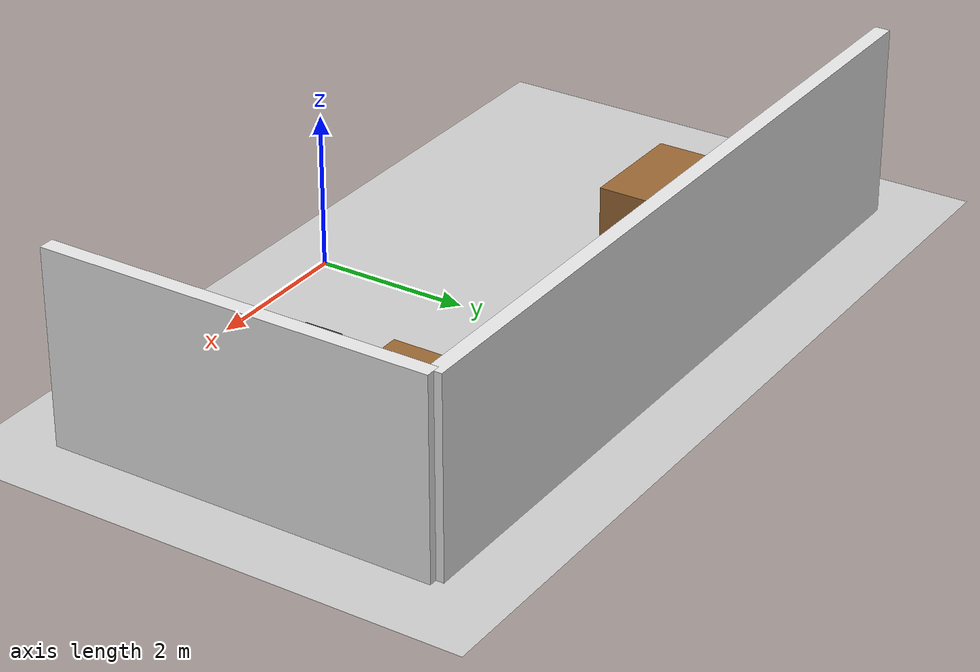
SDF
<?xml version="1.0" ?>
<sdf version="1.6">
  <world name="office">
    <include>
      <uri>model://sun</uri>
    </include>
    <include>
      <uri>model://ground_plane</uri>
    </include>

    <!-- Office rooms -->
    <model name="room1_wall1">
      <static>true</static>
      <pose>0 5 1.25 0 0 0</pose>
      <link name="link">
        <collision name="collision">
          <geometry>
            <box>
              <size>10 0.2 2.5</size>
            </box>
          </geometry>
        </collision>
        <visual name="visual">
          <geometry>
            <box>
              <size>10 0.2 2.5</size>
            </box>
          </geometry>
          <material>
            <ambient>0.9 0.9 0.9 1</ambient>
          </material>
        </visual>
      </link>
    </model>

    <model name="room1_wall2">
      <static>true</static>
      <pose>5 2.5 1.25 0 0 1.57</pose>
      <link name="link">
        <collision name="collision">
          <geometry>
            <box>
              <size>5 0.2 2.5</size>
            </box>
          </geometry>
        </collision>
        <visual name="visual">
          <geometry>
            <box>
              <size>5 0.2 2.5</size>
            </box>
          </geometry>
          <material>
            <ambient>0.9 0.9 0.9 1</ambient>
          </material>
        </visual>
      </link>
    </model>

    <!-- Desks -->
    <model name="desk1">
      <static>true</static>
      <pose>3 3 0.4 0 0 0</pose>
      <link name="link">
        <collision name="collision">
          <geometry>
            <box>
              <size>1.5 0.8 0.8</size>
            </box>
          </geometry>
        </collision>
        <visual name="visual">
          <geometry>
            <box>
              <size>1.5 0.8 0.8</size>
            </box>
          </geometry>
          <material>
            <ambient>0.6 0.4 0.2 1</ambient>
          </material>
        </visual>
      </link>
    </model>

    <model name="desk2">
      <static>true</static>
      <pose>-3 3 0.4 0 0 0</pose>
      <link name="link">
        <collision name="collision">
          <geometry>
            <box>
              <size>1.5 0.8 0.8</size>
            </box>
          </geometry>
        </collision>
        <visual name="visual">
          <geometry>
            <box>
              <size>1.5 0.8 0.8</size>
            </box>
          </geometry>
          <material>
            <ambient>0.6 0.4 0.2 1</ambient>
          </material>
        </visual>
      </link>
    </model>

    <!-- Chairs -->
    <model name="chair1">
      <static>true</static>
      <pose>3 2 0.5 0 0 0</pose>
      <link name="link">
        <collision name="collision">
          <geometry>
            <box>
              <size>0.5 0.5 1</size>
            </box>
          </geometry>
        </collision>
        <visual name="visual">
          <geometry>
            <box>
              <size>0.5 0.5 1</size>
            </box>
          </geometry>
          <material>
            <ambient>0.2 0.2 0.2 1</ambient>
          </material>
        </visual>
      </link>
    </model>

  </world>
</sdf>
